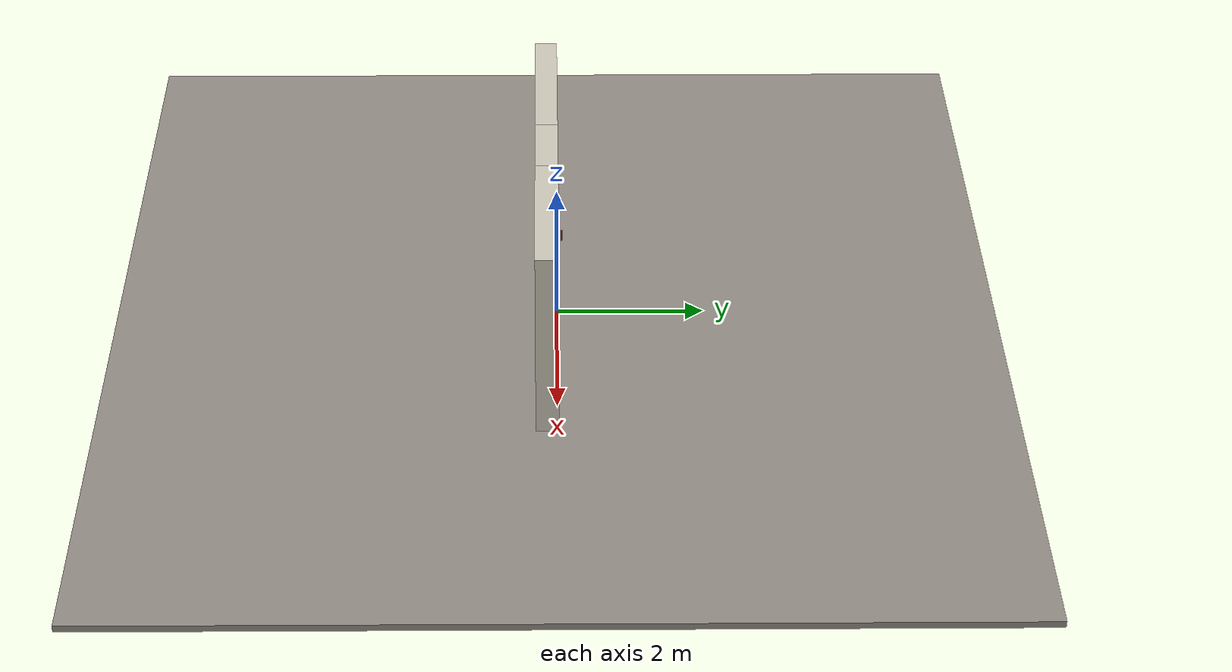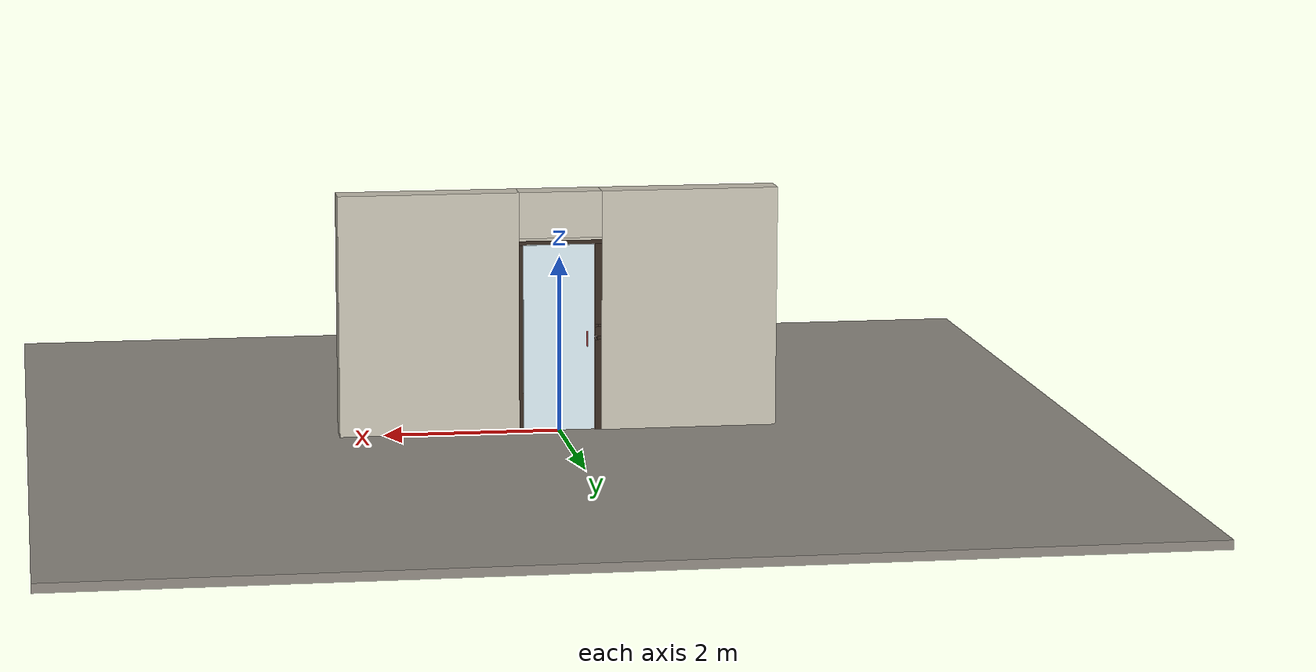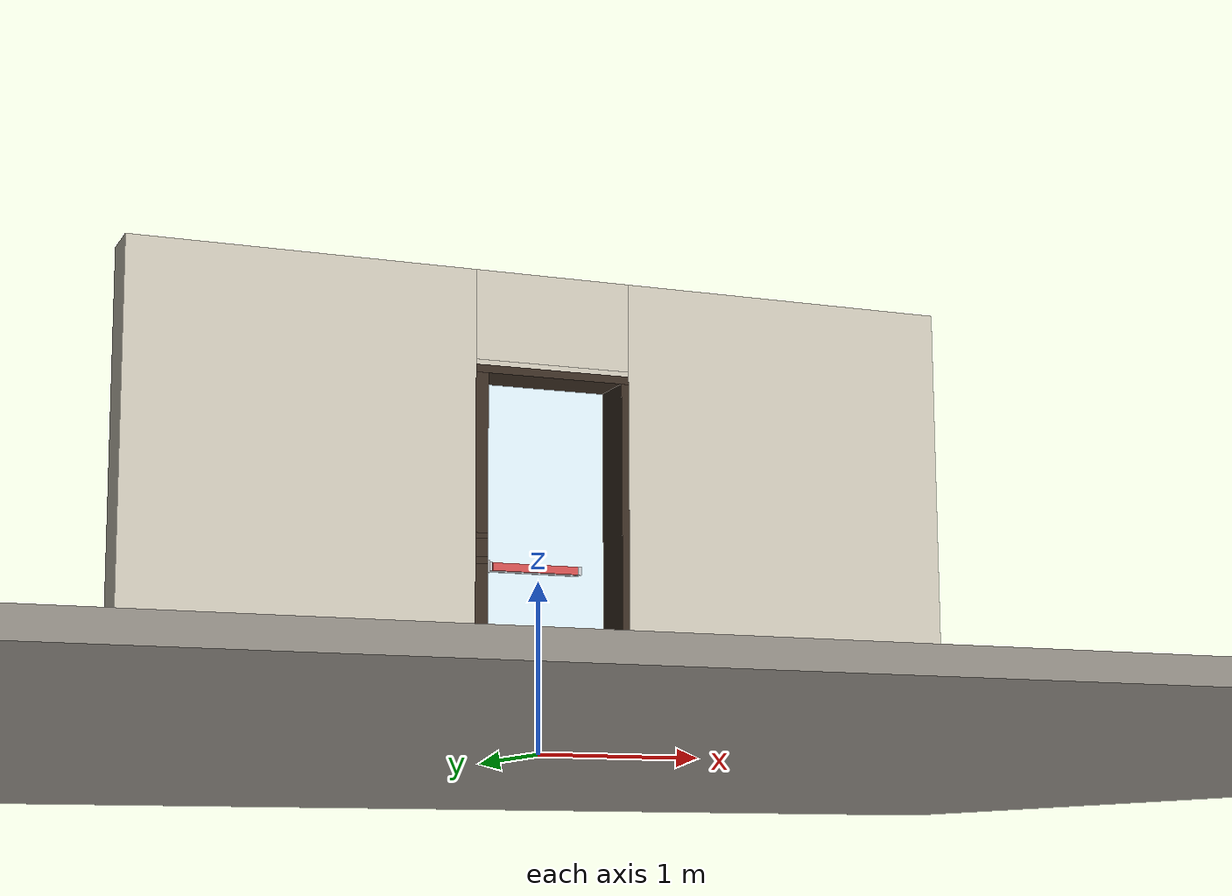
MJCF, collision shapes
<?xml version="1.0" ?>
<mujoco model="db0011_automatic_swing_minimal">
  <compiler angle="radian" meshdir="../../hardware" texturedir="../../textures" autolimits="true" inertiafromgeom="false"/>
  <option timestep="0.002" integrator="implicitfast" cone="elliptic" impratio="10" noslip_iterations="3">
    <flag multiccd="enable"/>
  </option>
  <size memory="16M"/>
  <default>
    <geom condim="4" solref="0.005 1" solimp="0.95 0.99 0.001"/>
    <joint solreflimit="0.005 1" solimplimit="0.95 0.99 0.001"/>
    <tendon solreflimit="0.005 1"/>
    <equality solref="0.002 1"/>
  </default>
  <visual>
    <headlight ambient="0.4 0.4 0.4" diffuse="0.7 0.7 0.7" specular="0.2 0.2 0.2"/>
    <quality shadowsize="4096"/>
    <map znear="0.01" zfar="60"/>
  </visual>
  <asset>
    <mesh name="pull_1e5d69a91a" file="pull_1e5d69a91a.obj"/>
    <material name="mat_floor" rgba="0.55 0.53 0.5 1" specular="0.2" shininess="0.15" reflectance="0"/>
    <material name="mat_wall" rgba="0.78 0.76 0.7 1" specular="0.2" shininess="0.1" reflectance="0"/>
    <material name="mat_leaf" rgba="0.85 0.92 0.95 0.25" specular="0.2" shininess="0.95" reflectance="0.1"/>
    <material name="mat_glass_leaf" rgba="0.85 0.92 0.95 0.25" specular="0.2" shininess="0.95" reflectance="0.1"/>
    <material name="mat_patch" rgba="0.75 0.76 0.77 1" specular="0.8" shininess="0.65" reflectance="0.4"/>
    <material name="mat_hinge" rgba="0.65 0.66 0.68 1" specular="0.74" shininess="0.5" reflectance="0.36"/>
    <material name="mat_op_stainless" rgba="0.75 0.76 0.77 1" specular="0.8" shininess="0.65" reflectance="0.4"/>
    <material name="mat_bolt" rgba="0.75 0.76 0.77 1" specular="0.8" shininess="0.65" reflectance="0.4"/>
    <material name="mat_deadbolt" rgba="0.85 0.66 0.3 1" specular="0.8" shininess="0.75" reflectance="0.4"/>
    <material name="mat_frame" rgba="0.22 0.17 0.13 1" specular="0.8" shininess="0.6" reflectance="0.4"/>
    <material name="mat_closer" rgba="0.22 0.17 0.13 1" specular="0.8" shininess="0.6" reflectance="0.4"/>
    <material name="mat_wallreader" rgba="0.05 0.05 0.05 1" specular="0.38" shininess="0.3" reflectance="0.12"/>
    <texture name="skybox" type="skybox" builtin="gradient" rgb1="0.6 0.7 0.85" rgb2="0.9 0.92 0.95" width="256" height="256"/>
  </asset>
  <worldbody>
    <light name="sun" pos="1.5 -2.5 4" dir="-0.3 0.5 -0.8" directional="true" diffuse="0.8 0.8 0.8" specular="0.3 0.3 0.3" castshadow="true"/>
    <light name="fill" pos="-1.5 2.5 3" dir="0.3 -0.5 -0.7" directional="true" diffuse="0.35 0.35 0.4" castshadow="false"/>
    <camera name="robot_view" pos="0 -2.774812 1.812087" xyaxes="1 0 0 0 0.26963 0.962964" fovy="52"/>
    <camera name="far_view" pos="0 2.500812 1.812087" xyaxes="-1 0 0 0 -0.26963 0.962964" fovy="52"/>
    <camera name="iso" pos="-2.004737 -2.352762 2.234138" xyaxes="0.741536 -0.670913 0 0.242917 0.268487 0.932151" fovy="46"/>
    <camera name="detail_handle" pos="-0.135 -0.734 1.347" xyaxes="0.97561 0.219512 0 -0.070934 0.315262 0.94635" fovy="38"/>
    <geom name="floor" type="box" size="6 6 0.05" pos="0 0 -0.05" material="mat_floor" group="0" contype="1" conaffinity="1" friction="0.8 0.005 0.0001" density="2400"/>
    <geom name="wall_left" type="box" size="1.007 0.15 1.3735" pos="-1.493 -0.137 1.3735" material="mat_wall" group="0" contype="1" conaffinity="1" friction="0.6 0.005 0.0001" density="800"/>
    <geom name="wall_right" type="box" size="1.022 0.15 1.3735" pos="1.478 -0.137 1.3735" material="mat_wall" group="0" contype="1" conaffinity="1" friction="0.6 0.005 0.0001" density="800"/>
    <geom name="wall_header" type="box" size="0.471 0.15 0.2625" pos="-0.015 -0.137 2.4845" material="mat_wall" group="0" contype="1" conaffinity="1" friction="0.6 0.005 0.0001" density="800"/>
    <geom name="jamb_hinge" type="box" size="0.0225 0.15 1.0735" pos="0.4335 -0.137 1.0735" material="mat_frame" group="0" contype="1" conaffinity="1" friction="0.6 0.005 0.0001" density="300"/>
    <geom name="strike_1067_wall_n" type="box" size="0.0375 0.124 0.02" pos="-0.4485 -0.163 1.067" material="mat_frame" group="0" contype="1" conaffinity="1" friction="0.6 0.005 0.0001" density="300"/>
    <geom name="strike_1067_wall_p" type="box" size="0.0375 0.008 0.02" pos="-0.4485 -0.009 1.067" material="mat_frame" group="0" contype="1" conaffinity="1" friction="0.6 0.005 0.0001" density="300"/>
    <geom name="strike_1067_ramp" type="box" size="0.0375 0.019723 0.02" pos="-0.453323 -0.003013 1.067" quat="0.964866 0 0 0.262741" material="mat_frame" group="0" contype="1" conaffinity="1" friction="0.12 0.005 0.0001" density="300"/>
    <geom name="strike_1067_back" type="box" size="0.026 0.011 0.02" pos="-0.46 -0.028 1.067" material="mat_frame" group="0" contype="1" conaffinity="1" friction="0.6 0.005 0.0001" density="300"/>
    <geom name="strike_1207_wall_n" type="box" size="0.0375 0.13875 0.0155" pos="-0.4485 -0.14825 1.207" material="mat_frame" group="0" contype="1" conaffinity="1" friction="0.6 0.005 0.0001" density="300"/>
    <geom name="strike_1207_wall_p" type="box" size="0.0157 0.003 0.0155" pos="-0.4267 0.0125 1.207" material="mat_frame" group="0" contype="1" conaffinity="1" friction="0.6 0.005 0.0001" density="300"/>
    <geom name="strike_1207_back" type="box" size="0.0228 0.0095 0.0155" pos="-0.4632 0 1.207" material="mat_frame" group="0" contype="1" conaffinity="1" friction="0.6 0.005 0.0001" density="300"/>
    <geom name="jamb_strike_0" type="box" size="0.0375 0.15 0.5235" pos="-0.4485 -0.137 0.5235" material="mat_frame" group="0" contype="1" conaffinity="1" friction="0.6 0.005 0.0001" density="300"/>
    <geom name="jamb_strike_1" type="box" size="0.0375 0.15 0.05225" pos="-0.4485 -0.137 1.13925" material="mat_frame" group="0" contype="1" conaffinity="1" friction="0.6 0.005 0.0001" density="300"/>
    <geom name="jamb_strike_2" type="box" size="0.0375 0.15 0.46225" pos="-0.4485 -0.137 1.68475" material="mat_frame" group="0" contype="1" conaffinity="1" friction="0.6 0.005 0.0001" density="300"/>
    <geom name="jamb_head" type="box" size="0.471 0.15 0.0225" pos="-0.015 -0.137 2.1695" material="mat_frame" group="0" contype="1" conaffinity="1" friction="0.6 0.005 0.0001" density="300"/>
    <geom name="head_stud" type="box" size="0.471 0.15 0.015" pos="-0.015 -0.137 2.207" material="mat_wall" group="0" contype="1" conaffinity="1" friction="0.6 0.005 0.0001" density="500"/>
    <site name="approach_point" pos="0 -1.5 0" quat="1 0 0 0" size="0.05" rgba="0.2 0.9 0.2 0.5" group="4"/>
    <site name="goal_point" pos="0 1.5 0" quat="1 0 0 0" size="0.05" rgba="0.2 0.9 0.2 0.5" group="4"/>
    <site name="door_plane_center" pos="0 0 1.0735" quat="1 0 0 0" size="0.02" rgba="0.2 0.9 0.2 0.5" group="4"/>
    <body name="leaf" pos="0.411 0 0">
      <inertial pos="-0.5145 -0.007965 1.071251" mass="63.796282" quat="0.498107 0.503721 -0.49617 0.501966" diaginertia="3.791354715 11.510945649 15.204856858"/>
      <joint name="leaf_hinge" type="hinge" axis="0 0 -1" pos="-0.019 0.016 0" limited="true" range="0 1.745329" damping="15.168374" frictionloss="0.633524" stiffness="15.342537" springref="-1.864099" armature="0.02"/>
      <geom name="leaf_glass" type="box" size="0.4065 0.006 1.067" pos="-0.4095 0 1.076" material="mat_glass_leaf" group="0" contype="1" conaffinity="1" friction="0.4 0.005 0.0001" density="1"/>
      <geom name="leaf_exit_device_rail" type="box" size="0.284225 0.006 0.025" pos="-0.451775 -0.012 1.067" material="mat_op_stainless" group="0" contype="1" conaffinity="1" friction="0.6 0.005 0.0001" density="3000"/>
      <geom name="leaf_exit_device_rail_end_n" type="box" size="0.01 0.0325 0.025" pos="-0.726 -0.0385 1.067" material="mat_op_stainless" group="0" contype="1" conaffinity="1" friction="0.6 0.005 0.0001" density="3000"/>
      <geom name="leaf_exit_device_rail_end_p" type="box" size="0.01 0.0325 0.025" pos="-0.17755 -0.0385 1.067" material="mat_op_stainless" group="0" contype="1" conaffinity="1" friction="0.6 0.005 0.0001" density="3000"/>
      <geom name="leaf_exit_device_case" type="box" size="0.034 0.034125 0.0375" pos="-0.77 -0.040125 1.067" material="mat_op_stainless" group="0" contype="1" conaffinity="1" friction="0.6 0.005 0.0001" density="3000"/>
      <geom name="leaf_far_pull_p" type="mesh" mesh="pull_1e5d69a91a" pos="-0.726 0.006 1.067" quat="0 0 0.707107 0.707107" material="mat_op_stainless" group="1" contype="0" conaffinity="0" density="3000"/>
      <geom name="leaf_far_pull_col_p" type="capsule" size="0.0095 0.08" pos="-0.726 0.066 1.067" material="mat_op_stainless" group="3" contype="1" conaffinity="1" rgba="0.8 0.3 0.3 0.25" friction="0.7 0.01 0.0001" density="3000"/>
      <site name="leaf_far_pull_grip_p" pos="-0.726 0.066 1.067" quat="1 0 0 0" size="0.012" rgba="0.2 0.9 0.2 0.5" group="4"/>
      <site name="leaf_edge_mid" pos="-0.816 0 1.067" quat="1 0 0 0" size="0.02" rgba="0.2 0.9 0.2 0.5" group="4"/>
      <body name="leaf_exit_device" pos="-0.451775 -0.006 1.067">
        <inertial pos="0 -0.05 0" mass="2.115923" quat="0 0 0.707107 0.707107" diaginertia="0.000515756 0.04828782 0.048486188"/>
        <joint name="leaf_exit_device_slide" type="slide" axis="0 1 0" limited="true" range="0 0.016" damping="145.027087" frictionloss="0.5" stiffness="1200" springref="-0.015" armature="0.15"/>
        <geom name="leaf_exit_device_pad_col" type="box" size="0.261225 0.015 0.0225" pos="0 -0.05 0" material="mat_op_stainless" group="3" contype="1" conaffinity="1" rgba="0.8 0.3 0.3 0.25" friction="0.8 0.01 0.0001" density="3000"/>
        <site name="leaf_exit_device_push" pos="0 -0.065 0" quat="1 0 0 0" size="0.015" rgba="0.2 0.9 0.2 0.5" group="4"/>
      </body>
      <body name="leaf_latch_bolt" pos="-0.816 -0.028 1.067">
        <inertial pos="0.0055 0 0" mass="0.102826" quat="0.92388 0.382683 0 0" diaginertia="0.000004365 0.000018287 0.000018287"/>
        <joint name="leaf_latch_bolt_slide" type="slide" axis="1 0 0" limited="true" range="0 0.019" damping="2" frictionloss="0.3" stiffness="800" springref="-0.01" armature="0.1"/>
        <geom name="leaf_latch_bolt_capsule" type="capsule" size="0.0095 0.015" pos="0.0055 0 0" quat="0.707107 0 -0.707107 0" material="mat_bolt" group="0" contype="1" conaffinity="1" friction="0.2 0.005 0.0001" density="8500"/>
      </body>
    </body>
  </worldbody>
  <tendon>
    <fixed name="leaf_latch_bolt_coupling" limited="true" range="0 10">
      <joint joint="leaf_latch_bolt_slide" coef="1"/>
      <joint joint="leaf_exit_device_slide" coef="-1.357143"/>
    </fixed>
  </tendon>
  <actuator>
    <position name="swing_operator" joint="leaf_hinge" kp="150" kv="40" forcerange="-60 60" ctrlrange="0 1.6"/>
  </actuator>
  <sensor>
    <jointpos name="leaf_hinge_pos" joint="leaf_hinge"/>
    <jointvel name="leaf_hinge_vel" joint="leaf_hinge"/>
    <jointpos name="leaf_exit_device_slide_pos" joint="leaf_exit_device_slide"/>
    <jointvel name="leaf_exit_device_slide_vel" joint="leaf_exit_device_slide"/>
    <jointpos name="leaf_latch_bolt_slide_pos" joint="leaf_latch_bolt_slide"/>
    <jointvel name="leaf_latch_bolt_slide_vel" joint="leaf_latch_bolt_slide"/>
  </sensor>
</mujoco>
